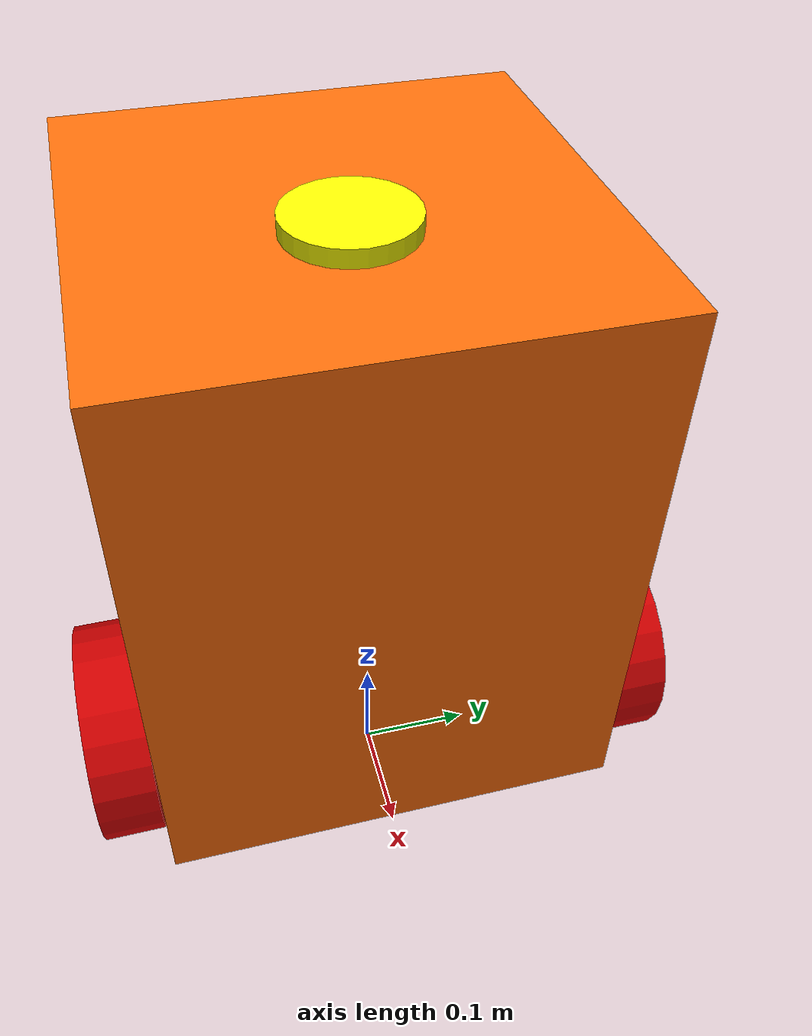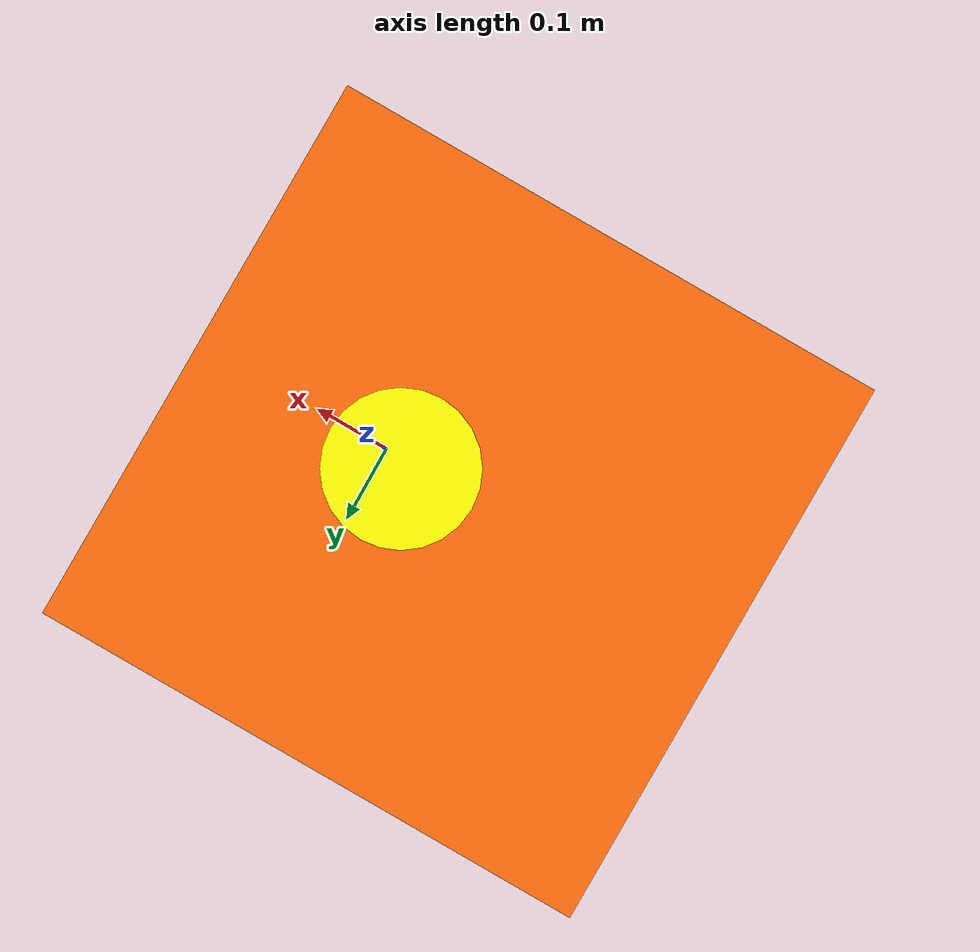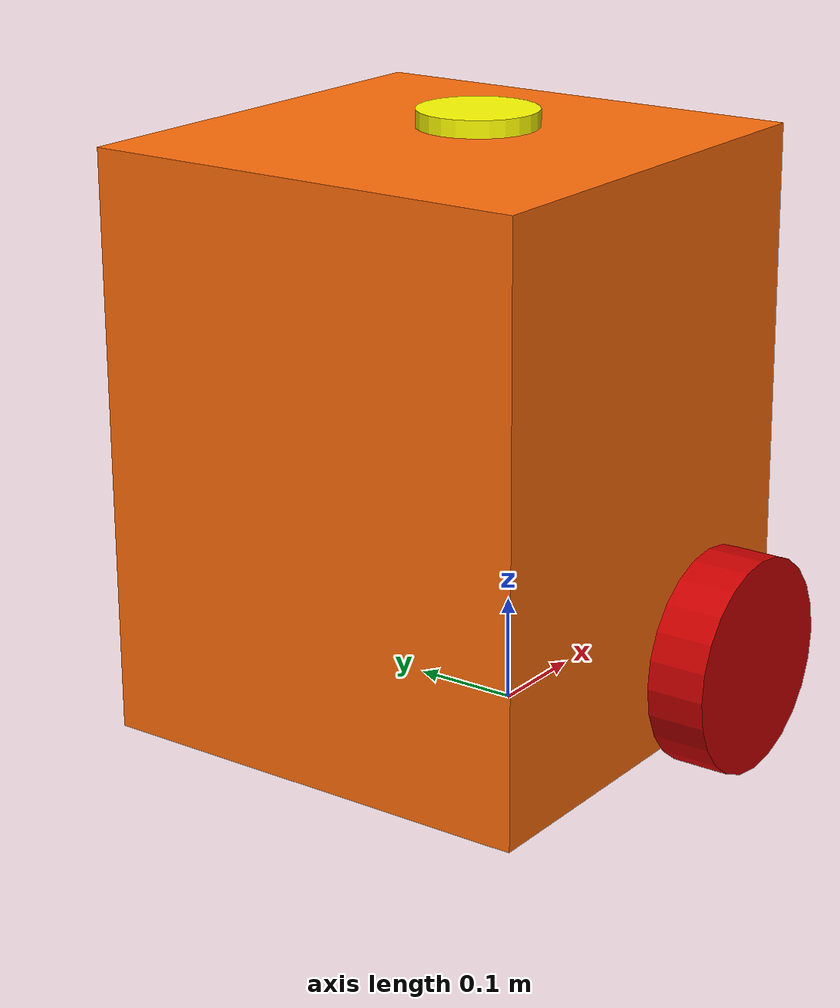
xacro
<?xml version="1.0" ?>
<robot name="trolly" xmlns:xacro="http://ros.org/wiki/xacro">

  <xacro:include filename="$(find trolly)/urdf/coloured_materials.xacro"/>
  <xacro:include filename="$(find trolly)/urdf/plugins.gazebo.xacro"/>

  <link name="base_footprint"/>

  <joint name="base_joint" type="fixed">
    <parent link="base_footprint"/>
    <child link="base_link"/>
    <origin xyz="0.0 0.0 0.030" rpy="0 0 0"/>
  </joint>

  <link name="base_link">
    <visual>
      <origin xyz="-0.096 0 0.265" rpy="0 0 0"/>
      <geometry>
        <box size="0.420 0.420 0.530"/>
      </geometry>
      <material name="orange"/>
    </visual>

    <collision>
      <origin xyz="-0.096 0 0.265" rpy="0 0 0"/>
      <geometry>
        <box size="0.420 0.420 0.530"/>
      </geometry>
    </collision>

    <inertial>
      <origin xyz="0 0 0" rpy="0 0 0"/>
      <mass value="8.2573504e-01"/>
      <inertia ixx="2.2124416e-03" ixy="-1.2294101e-05" ixz="3.4938785e-05"
               iyy="2.1193702e-03" iyz="-5.0120904e-06"
               izz="2.0064271e-03" />
    </inertial>
  </link>

  <gazebo reference="base_link">
    <material>Gazebo/Orange</material>
  </gazebo>

  <joint name="wheel_left_joint" type="continuous">
    <parent link="base_link"/>
    <child link="wheel_left_link"/>
    <origin xyz="0.0 0.24 0.069" rpy="-1.57 0 0"/>
    <axis xyz="0 0 1"/>
  </joint>

  <link name="wheel_left_link">
    <visual>
      <origin xyz="0 0 0" rpy="0 0 0"/>
      <geometry>
        <cylinder length="0.054" radius="0.099"/>
      </geometry>
      <material name="red"/>
    </visual>

    <collision>
      <origin xyz="0 0 0" rpy="0 0 0"/>
      <geometry>
        <cylinder length="0.054" radius="0.099"/>
      </geometry>
    </collision>

    <inertial>
      <origin xyz="0 0 0" />
      <mass value="2.8498940e-02" />
      <inertia ixx="1.1175580e-05" ixy="-4.2369783e-11" ixz="-5.9381719e-09"
               iyy="1.1192413e-05" iyz="-1.4400107e-11"
               izz="2.0712558e-05" />
      </inertial>
  </link>

  <gazebo reference="wheel_left_link">
    <material>Gazebo/Red</material>
  </gazebo>

  <joint name="wheel_right_joint" type="continuous">
    <parent link="base_link"/>
    <child link="wheel_right_link"/>
    <origin xyz="0.0 -0.240 0.069" rpy="-1.57 0 0"/>
    <axis xyz="0 0 1"/>
  </joint>

  <link name="wheel_right_link">
    <visual>
      <origin xyz="0 0 0" rpy="0 0 0"/>
      <geometry>
        <cylinder length="0.054" radius="0.099"/>
      </geometry>
      <material name="red"/>
    </visual>

    <collision>
      <origin xyz="0 0 0" rpy="0 0 0"/>
      <geometry>
        <cylinder length="0.054" radius="0.099"/>
      </geometry>
    </collision>

    <inertial>
      <origin xyz="0 0 0" />
      <mass value="2.8498940e-02" />
      <inertia ixx="1.1175580e-05" ixy="-4.2369783e-11" ixz="-5.9381719e-09"
               iyy="1.1192413e-05" iyz="-1.4400107e-11"
               izz="2.0712558e-05" />
      </inertial>
  </link>

  <gazebo reference="wheel_right_link">
    <material>Gazebo/Red</material>
  </gazebo>

  <joint name="caster_back_joint" type="fixed">
    <parent link="base_link"/>
    <child link="caster_back_link"/>
    <origin xyz="-0.243 0 -0.012" rpy="-1.57 0 0"/>
  </joint>

  <link name="caster_back_link">
    <collision>
      <origin xyz="0 0.003 0" rpy="0 0 0"/>
      <geometry>
        <box size="0.090 0.027 0.060"/>
      </geometry>
    </collision>

    <inertial>
      <origin xyz="0 0 0" />
      <mass value="0.005" />
      <inertia ixx="0.001" ixy="0.0" ixz="0.0"
               iyy="0.001" iyz="0.0"
               izz="0.001" />
    </inertial>
  </link>

  <gazebo reference="caster_back_link">
    <material>Gazebo/Red</material>
  </gazebo>

  <joint name="imu_joint" type="fixed">
    <parent link="base_link"/>
    <child link="imu_link"/>
    <origin xyz="-0.096 0 0.204" rpy="0 0 0"/>
  </joint>

  <link name="imu_link"/>

  <joint name="scan_joint" type="fixed">
    <parent link="base_link"/>
    <child link="base_scan"/>
    <origin xyz="-0.096 0 0.54575" rpy="0 0 0"/>
  </joint>

  <link name="base_scan">
    <visual>
      <origin xyz="0.045 0 -0.01575" rpy="0 0 0"/>
      <geometry>
        <cylinder length="0.0315" radius="0.055"/>
      </geometry>
      <material name="yellow"/>
    </visual>

    <collision>
      <origin xyz="0.045 0 -0.01575" rpy="0 0 0"/>
      <geometry>
        <cylinder length="0.0315" radius="0.055"/>
      </geometry>
    </collision>

    <inertial>
      <mass value="0.114" />
      <origin xyz="0 0 0" />
      <inertia ixx="0.001" ixy="0.0" ixz="0.0"
               iyy="0.001" iyz="0.0"
               izz="0.001" />
    </inertial>
  </link>

  <gazebo reference="base_scan">
    <material>Gazebo/Yellow</material>
  </gazebo>

</robot>

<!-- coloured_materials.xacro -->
<robot name="xacro_properties" xmlns:xacro="http://ros.org/wiki/xacro">

  <!-- Init colour -->
  <material name="black">
      <color rgba="0.0 0.0 0.0 1.0"/>
  </material>

  <material name="dark">
    <color rgba="0.3 0.3 0.3 1.0"/>
  </material>
  <material name="light_black">
    <color rgba="0.4 0.4 0.4 1.0"/>
  </material>

  <material name="blue">
    <color rgba="0.0 0.0 0.8 1.0"/>
  </material>

  <material name="yellow">
    <color rgba="1.0 1.0 0.0 1.0"/>
  </material>

  <material name="green">
    <color rgba="0.0 0.8 0.0 1.0"/>
  </material>

  <material name="grey">
    <color rgba="0.5 0.5 0.5 1.0"/>
  </material>

  <material name="orange">
    <color rgba="${255/255} ${108/255} ${10/255} 1.0"/>
  </material>

  <material name="brown">
    <color rgba="${222/255} ${207/255} ${195/255} 1.0"/>
  </material>

  <material name="red">
    <color rgba="0.8 0.0 0.0 1.0"/>
  </material>

  <material name="white">
    <color rgba="1.0 1.0 1.0 1.0"/>
  </material>
</robot>
